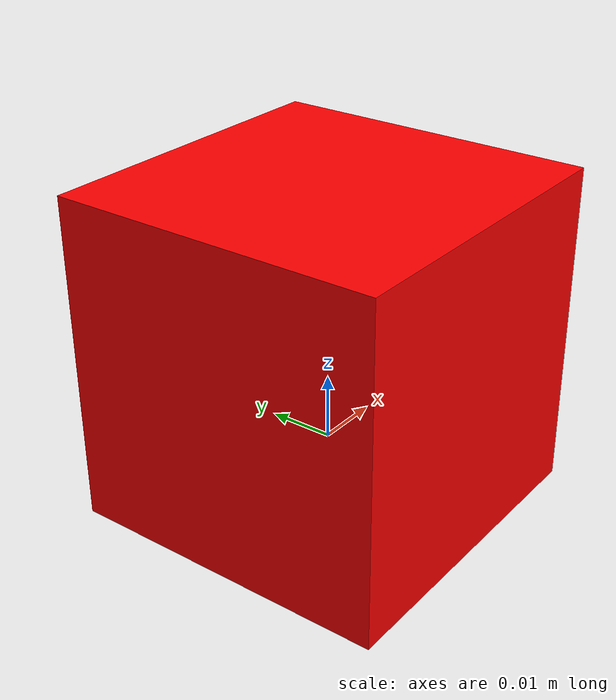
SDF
<?xml version="1.0" ?>
<sdf version="1.6">
  <model name="cube">
    <static>false</static>
    <link name="link">
      <pose>0 0 0.015 0 0 0</pose>
      <inertial>
        <mass>0.05</mass>
        <inertia>
          <ixx>0.000015</ixx>
          <ixy>0.0</ixy>
          <ixz>0.0</ixz>
          <iyy>0.000015</iyy>
          <iyz>0.0</iyz>
          <izz>0.000015</izz>
        </inertia>
      </inertial>
      <collision name="collision">
        <geometry>
          <box>
            <size>0.03 0.03 0.03</size>
          </box>
        </geometry>
      </collision>
      <visual name="visual">
        <geometry>
          <box>
            <size>0.05 0.05 0.05</size>
          </box>
        </geometry>
        <material>
          <ambient>1 0 0 1</ambient>
          <diffuse>1 0 0 1</diffuse>
        </material>
      </visual>
    </link>
  </model>
</sdf>
